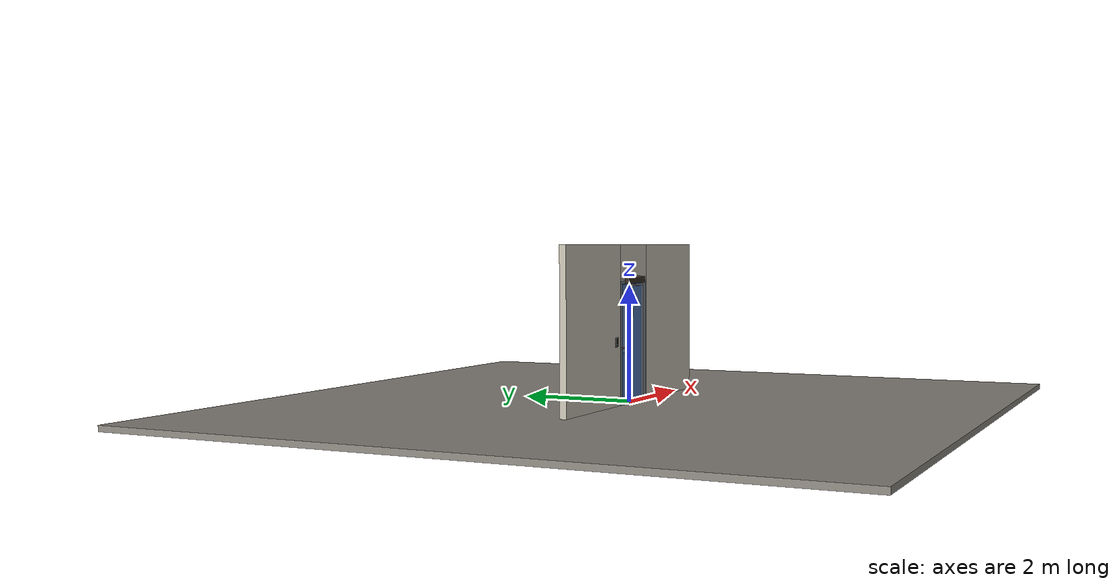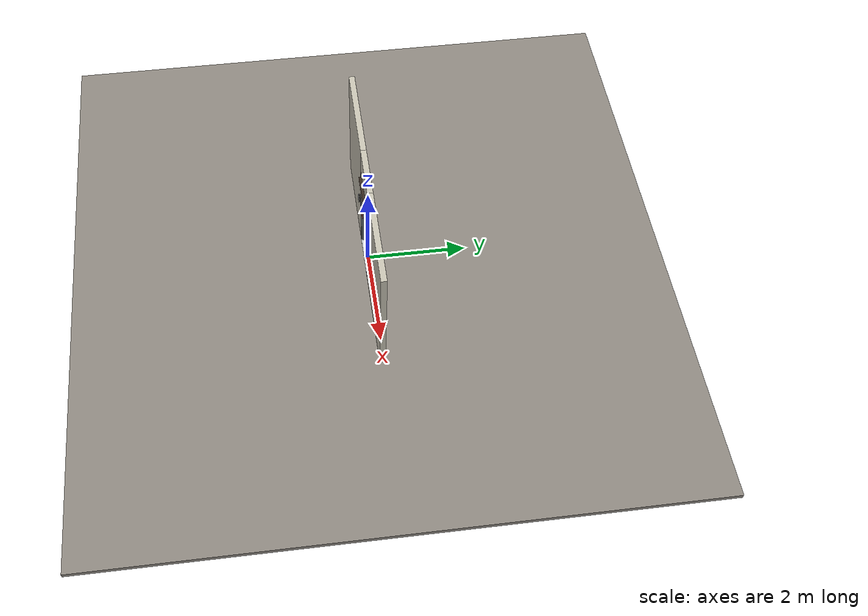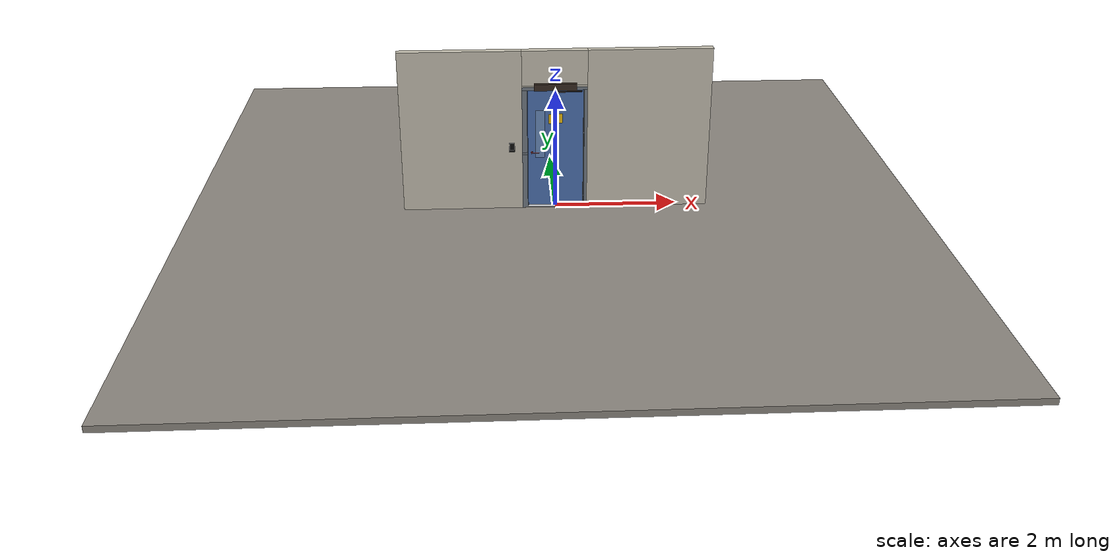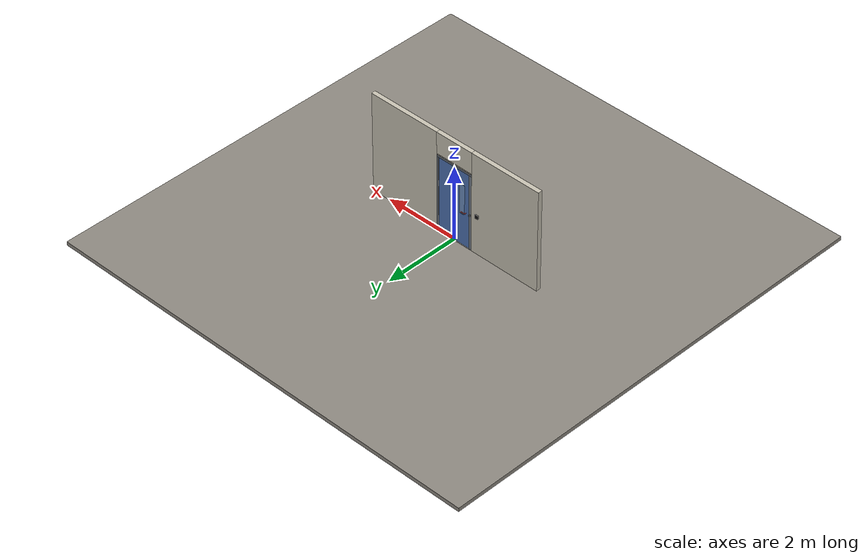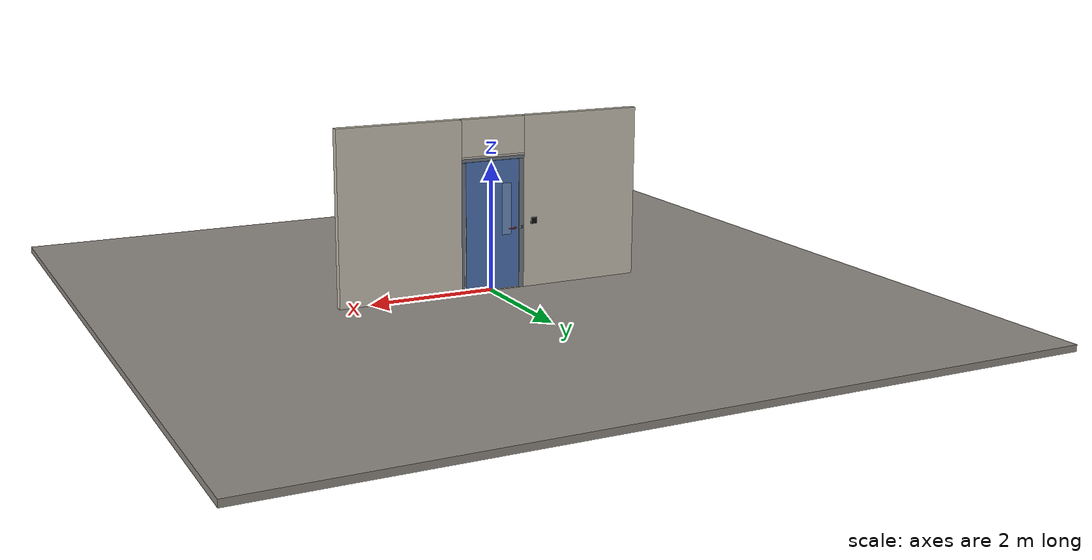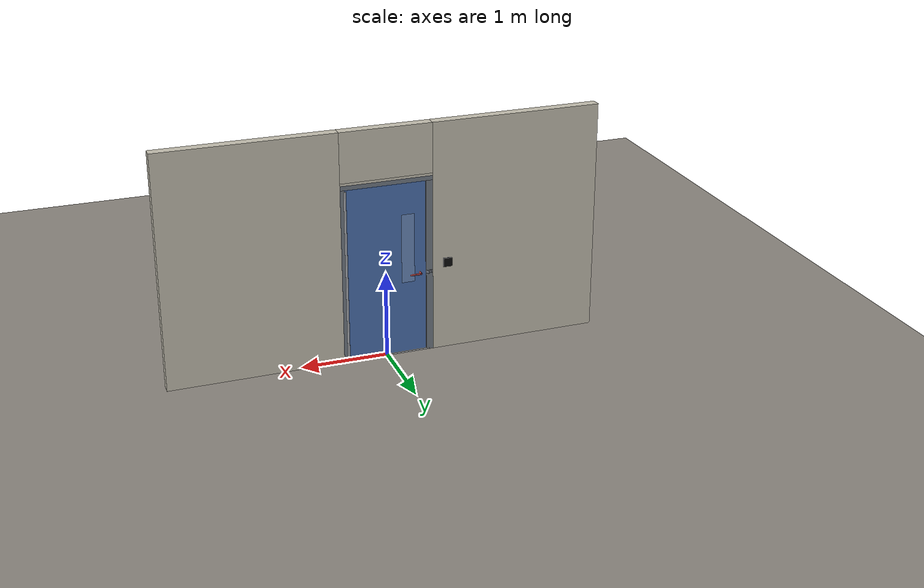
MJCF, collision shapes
<?xml version="1.0" ?>
<mujoco model="db0089_automatic_swing_full">
  <compiler angle="radian" meshdir="../../hardware" texturedir="../../textures" autolimits="true" inertiafromgeom="false"/>
  <option timestep="0.002" integrator="implicitfast" cone="elliptic" impratio="10" noslip_iterations="3">
    <flag multiccd="enable"/>
  </option>
  <size memory="16M"/>
  <default>
    <geom condim="4" solref="0.005 1" solimp="0.95 0.99 0.001"/>
    <joint solreflimit="0.005 1" solimplimit="0.95 0.99 0.001"/>
    <tendon solreflimit="0.005 1"/>
    <equality solref="0.002 1"/>
  </default>
  <visual>
    <headlight ambient="0.4 0.4 0.4" diffuse="0.7 0.7 0.7" specular="0.2 0.2 0.2"/>
    <quality shadowsize="4096"/>
    <map znear="0.01" zfar="60"/>
  </visual>
  <asset>
    <mesh name="lever_9f02b544cf" file="lever_9f02b544cf.obj"/>
    <material name="mat_floor" rgba="0.55 0.53 0.5 1" specular="0.2" shininess="0.15" reflectance="0"/>
    <material name="mat_wall" rgba="0.78 0.76 0.7 1" specular="0.2" shininess="0.1" reflectance="0"/>
    <material name="mat_leaf" rgba="0.3 0.45 0.7 1" specular="0.23" shininess="0.58" reflectance="0.02"/>
    <material name="mat_glass" rgba="0.85 0.92 0.95 0.25" specular="0.2" shininess="0.95" reflectance="0.1"/>
    <material name="mat_hinge" rgba="0.65 0.66 0.68 1" specular="0.74" shininess="0.5" reflectance="0.36"/>
    <material name="mat_op_nickel_satin" rgba="0.72 0.7 0.66 1" specular="0.8" shininess="0.65" reflectance="0.4"/>
    <material name="mat_trim" rgba="0.85 0.66 0.3 1" specular="0.8" shininess="0.75" reflectance="0.4"/>
    <material name="mat_bolt" rgba="0.85 0.66 0.3 1" specular="0.8" shininess="0.75" reflectance="0.4"/>
    <material name="mat_frame" rgba="0.45 0.48 0.52 1" specular="0.32" shininess="0.6" reflectance="0.08"/>
    <material name="mat_threshold" rgba="0.8 0.81 0.83 1" specular="0.8" shininess="0.6" reflectance="0.4"/>
    <material name="mat_closer" rgba="0.22 0.17 0.13 1" specular="0.8" shininess="0.6" reflectance="0.4"/>
    <material name="mat_placard" rgba="0.95 0.75 0.05 1" specular="0.2" shininess="0.5" reflectance="0"/>
    <material name="mat_wallreader" rgba="0.05 0.05 0.05 1" specular="0.38" shininess="0.3" reflectance="0.12"/>
    <texture name="skybox" type="skybox" builtin="gradient" rgb1="0.6 0.7 0.85" rgb2="0.9 0.92 0.95" width="256" height="256"/>
  </asset>
  <worldbody>
    <light name="sun" pos="1.5 -2.5 4" dir="-0.3 0.5 -0.8" directional="true" diffuse="0.8 0.8 0.8" specular="0.3 0.3 0.3" castshadow="true"/>
    <light name="fill" pos="-1.5 2.5 3" dir="0.3 -0.5 -0.7" directional="true" diffuse="0.35 0.35 0.4" castshadow="false"/>
    <camera name="robot_view" pos="0 -2.570688 1.734312" xyaxes="1 0 0 0 0.26963 0.962964" fovy="52"/>
    <camera name="far_view" pos="0 2.513687 1.734312" xyaxes="-1 0 0 0 -0.26963 0.962964" fovy="52"/>
    <camera name="iso" pos="-1.932062 -2.163938 2.141063" xyaxes="0.741536 -0.670913 0 0.242917 0.268487 0.932151" fovy="46"/>
    <camera name="detail_handle" pos="-0.1065 -0.877 1.245" xyaxes="0.97561 0.219512 0 -0.070934 0.315262 0.94635" fovy="38"/>
    <geom name="floor" type="box" size="6 6 0.05" pos="0 0 -0.05" material="mat_floor" group="0" contype="1" conaffinity="1" friction="0.8 0.005 0.0001" density="2400"/>
    <geom name="wall_left" type="box" size="0.97975 0.0575 1.35" pos="-1.52025 -0.0285 1.35" material="mat_wall" group="0" contype="1" conaffinity="1" friction="0.6 0.005 0.0001" density="800"/>
    <geom name="wall_right" type="box" size="0.99475 0.0575 1.35" pos="1.50525 -0.0285 1.35" material="mat_wall" group="0" contype="1" conaffinity="1" friction="0.6 0.005 0.0001" density="800"/>
    <geom name="wall_header" type="box" size="0.5255 0.0575 0.2875" pos="-0.015 -0.0285 2.4125" material="mat_wall" group="0" contype="1" conaffinity="1" friction="0.6 0.005 0.0001" density="800"/>
    <geom name="jamb_hinge" type="box" size="0.025 0.0575 1.0225" pos="0.4855 -0.0285 1.0225" material="mat_frame" group="0" contype="1" conaffinity="1" friction="0.6 0.005 0.0001" density="300"/>
    <geom name="strike_965_wall_n" type="box" size="0.04 0.03825 0.0183" pos="-0.5005 -0.04775 0.965" material="mat_frame" group="0" contype="1" conaffinity="1" friction="0.6 0.005 0.0001" density="300"/>
    <geom name="strike_965_wall_p" type="box" size="0.04 0.008 0.0183" pos="-0.5005 0.0175 0.965" material="mat_frame" group="0" contype="1" conaffinity="1" friction="0.6 0.005 0.0001" density="300"/>
    <geom name="strike_965_ramp" type="box" size="0.04 0.018028 0.0183" pos="-0.503782 0.018312 0.965" quat="0.957092 0 0 0.289784" material="mat_frame" group="0" contype="1" conaffinity="1" friction="0.12 0.005 0.0001" density="300"/>
    <geom name="strike_965_back" type="box" size="0.0285 0.0095 0.0183" pos="-0.512 0 0.965" material="mat_frame" group="0" contype="1" conaffinity="1" friction="0.6 0.005 0.0001" density="300"/>
    <geom name="jamb_strike_0" type="box" size="0.04 0.0575 0.47335" pos="-0.5005 -0.0285 0.47335" material="mat_frame" group="0" contype="1" conaffinity="1" friction="0.6 0.005 0.0001" density="300"/>
    <geom name="jamb_strike_1" type="box" size="0.04 0.0575 0.53085" pos="-0.5005 -0.0285 1.51415" material="mat_frame" group="0" contype="1" conaffinity="1" friction="0.6 0.005 0.0001" density="300"/>
    <geom name="jamb_head" type="box" size="0.5255 0.0575 0.025" pos="-0.015 -0.0285 2.07" material="mat_frame" group="0" contype="1" conaffinity="1" friction="0.6 0.005 0.0001" density="300"/>
    <geom name="head_stud" type="box" size="0.5255 0.0575 0.015" pos="-0.015 -0.0285 2.11" material="mat_wall" group="0" contype="1" conaffinity="1" friction="0.6 0.005 0.0001" density="500"/>
    <geom name="stop_hinge" type="box" size="0.0055 0.016 1.0225" pos="0.455 -0.0385 1.0225" material="mat_frame" group="0" contype="1" conaffinity="1" friction="0.6 0.005 0.0001" density="300"/>
    <geom name="stop_strike" type="box" size="0.0055 0.016 1.0225" pos="-0.455 -0.0385 1.0225" material="mat_frame" group="0" contype="1" conaffinity="1" friction="0.6 0.005 0.0001" density="300"/>
    <geom name="stop_head" type="box" size="0.4605 0.016 0.0055" pos="0 -0.0385 2.0395" material="mat_frame" group="0" contype="1" conaffinity="1" friction="0.6 0.005 0.0001" density="300"/>
    <geom name="threshold" type="box" size="0.5105 0.0575 0.0065" pos="0 -0.0285 0.0065" material="mat_threshold" group="0" contype="1" conaffinity="1" friction="0.5 0.005 0.0001" density="2700"/>
    <geom name="auto_operator_header" type="box" size="0.34 0.055 0.055" pos="0 -0.087 2.108" material="mat_closer" group="0" contype="1" conaffinity="1" friction="0.6 0.005 0.0001" density="1500"/>
    <geom name="wall_reader" type="box" size="0.04 0.015 0.06" pos="-0.7105 -0.101 1.1" material="mat_wallreader" group="0" contype="1" conaffinity="1" friction="0.6 0.005 0.0001" density="1000"/>
    <geom name="wave_sensor_n" type="box" size="0.05 0.012 0.05" pos="-0.7105 -0.098 1.05" material="mat_wallreader" group="0" contype="1" conaffinity="1" friction="0.6 0.005 0.0001" density="1000"/>
    <geom name="wave_sensor_p" type="box" size="0.05 0.012 0.05" pos="-0.7105 0.041 1.05" material="mat_wallreader" group="0" contype="1" conaffinity="1" friction="0.6 0.005 0.0001" density="1000"/>
    <geom name="wave_sensor_p_pad" type="box" size="0.04 0.058 0.04" pos="-0.7105 -0.0285 1.05" material="mat_wallreader" group="1" contype="0" conaffinity="0" density="7850"/>
    <site name="approach_point" pos="0 -1.5 0" quat="1 0 0 0" size="0.05" rgba="0.2 0.9 0.2 0.5" group="4"/>
    <site name="goal_point" pos="0 1.5 0" quat="1 0 0 0" size="0.05" rgba="0.2 0.9 0.2 0.5" group="4"/>
    <site name="door_plane_center" pos="0 0 1.0225" quat="1 0 0 0" size="0.02" rgba="0.2 0.9 0.2 0.5" group="4"/>
    <body name="leaf" pos="0.4605 0 0">
      <inertial pos="-0.427331 0.001491 1.039359" mass="56.447972" quat="0.498104 0.503898 -0.496797 0.501171" diaginertia="4.40359162 19.573206235 23.951712336"/>
      <joint name="leaf_hinge" type="hinge" axis="0 0 -1" pos="-0.003 0.029 0" limited="true" range="0 1.570796" damping="15.25611" frictionloss="1.116277" stiffness="12.827888" springref="-1.543512" armature="0.02"/>
      <geom name="leaf_slab" type="box" size="0.457 0.022 1.012" pos="-0.46 0 1.029" material="mat_leaf" group="0" contype="1" conaffinity="1" friction="0.4 0.005 0.0001" density="1"/>
      <geom name="leaf_glass_0" type="box" size="0.075 0.0228 0.4048" pos="-0.71146 0 1.27188" material="mat_glass" group="1" contype="0" conaffinity="0" density="1"/>
      <geom name="hinge_continuous" type="cylinder" size="0.0136 1.002" pos="-0.003 0.029 1.029" material="mat_hinge" group="1" contype="0" conaffinity="0" density="2700"/>
      <geom name="leaf_latch_bolt_faceplate" type="box" size="0.0006 0.014 0.0283" pos="-0.9164 0 0.965" material="mat_bolt" group="1" contype="0" conaffinity="0" density="8500"/>
      <geom name="auto_operator_arm" type="box" size="0.22 0.008 0.008" pos="-0.25 -0.052 2.004" material="mat_closer" group="1" contype="0" conaffinity="0" density="2700"/>
      <geom name="auto_operator_arm_shoe" type="box" size="0.03 0.016 0.014" pos="-0.44 -0.038 2.004" material="mat_closer" group="1" contype="0" conaffinity="0" density="2700"/>
      <geom name="warning_placard" type="box" size="0.11 0.001 0.08" pos="-0.46 -0.023 1.535" material="mat_placard" group="2" contype="0" conaffinity="0" density="1000"/>
      <site name="leaf_edge_mid" pos="-0.917 0 1.012" quat="1 0 0 0" size="0.02" rgba="0.2 0.9 0.2 0.5" group="4"/>
      <body name="leaf_handle" pos="-0.847 0 0.965">
        <inertial pos="0.028544 0 0" mass="0.978187" quat="0 0.707107 0.707107 0" diaginertia="0.001772047 0.003604455 0.005198299"/>
        <joint name="leaf_handle_hinge" type="hinge" axis="0 1 0" limited="true" range="0 0.96" damping="0.245624" frictionloss="0.048" stiffness="1.2" springref="-0.458333" armature="0.01"/>
        <geom name="leaf_handle_spindle" type="cylinder" size="0.006 0.03" pos="0 0 0" quat="0.707107 -0.707107 0 0" material="mat_op_nickel_satin" group="1" contype="0" conaffinity="0" density="7850"/>
        <geom name="leaf_handle_lever_n" type="mesh" mesh="lever_9f02b544cf" pos="0 -0.022 0" quat="0 0 -0.707107 0.707107" material="mat_op_nickel_satin" group="1" contype="0" conaffinity="0" density="3000"/>
        <geom name="leaf_handle_lever_col_n" type="capsule" size="0.0095 0.053" pos="0.0625 -0.077 0" quat="0.707107 0 0.707107 0" material="mat_op_nickel_satin" group="3" contype="1" conaffinity="1" rgba="0.8 0.3 0.3 0.25" friction="0.7 0.01 0.0001" density="3000"/>
        <geom name="leaf_handle_hub_col_n" type="cylinder" size="0.012 0.022" pos="0 -0.052 0" quat="0.707107 -0.707107 0 0" material="mat_op_nickel_satin" group="3" contype="1" conaffinity="1" rgba="0.8 0.3 0.3 0.25" friction="0.6 0.005 0.0001" density="3000"/>
        <geom name="leaf_handle_lever_p" type="mesh" mesh="lever_9f02b544cf" pos="0 0.022 0" quat="0 0 0.707107 0.707107" material="mat_op_nickel_satin" group="1" contype="0" conaffinity="0" density="3000"/>
        <geom name="leaf_handle_lever_col_p" type="capsule" size="0.0095 0.053" pos="0.0625 0.077 0" quat="0.707107 0 0.707107 0" material="mat_op_nickel_satin" group="3" contype="1" conaffinity="1" rgba="0.8 0.3 0.3 0.25" friction="0.7 0.01 0.0001" density="3000"/>
        <geom name="leaf_handle_hub_col_p" type="cylinder" size="0.012 0.022" pos="0 0.052 0" quat="0.707107 -0.707107 0 0" material="mat_op_nickel_satin" group="3" contype="1" conaffinity="1" rgba="0.8 0.3 0.3 0.25" friction="0.6 0.005 0.0001" density="3000"/>
        <site name="leaf_handle_grip_n" pos="0.1 -0.077 0" quat="1 0 0 0" size="0.012" rgba="0.2 0.9 0.2 0.5" group="4"/>
        <site name="leaf_handle_grip_p" pos="0.1 0.077 0" quat="1 0 0 0" size="0.012" rgba="0.2 0.9 0.2 0.5" group="4"/>
      </body>
      <body name="leaf_latch_bolt" pos="-0.917 0 0.965">
        <inertial pos="0.0055 0 0" mass="0.074627" quat="0.92388 0.382683 0 0" diaginertia="0.000002271 0.000013255 0.000013255"/>
        <joint name="leaf_latch_bolt_slide" type="slide" axis="1 0 0" limited="true" range="0 0.019" damping="2" frictionloss="0.3" stiffness="600" springref="-0.01" armature="0.1"/>
        <geom name="leaf_latch_bolt_capsule" type="capsule" size="0.008 0.0165" pos="0.0055 0 0" quat="0.707107 0 -0.707107 0" material="mat_bolt" group="0" contype="1" conaffinity="1" friction="0.2 0.005 0.0001" density="8500"/>
      </body>
    </body>
  </worldbody>
  <tendon>
    <fixed name="leaf_latch_bolt_coupling" limited="true" range="0 10">
      <joint joint="leaf_latch_bolt_slide" coef="1"/>
      <joint joint="leaf_handle_hinge" coef="-0.020879"/>
    </fixed>
  </tendon>
  <actuator>
    <position name="swing_operator" joint="leaf_hinge" kp="150" kv="40" forcerange="-60 60" ctrlrange="0 1.6"/>
  </actuator>
  <sensor>
    <jointpos name="leaf_hinge_pos" joint="leaf_hinge"/>
    <jointvel name="leaf_hinge_vel" joint="leaf_hinge"/>
    <jointpos name="leaf_handle_hinge_pos" joint="leaf_handle_hinge"/>
    <jointvel name="leaf_handle_hinge_vel" joint="leaf_handle_hinge"/>
    <jointpos name="leaf_latch_bolt_slide_pos" joint="leaf_latch_bolt_slide"/>
    <jointvel name="leaf_latch_bolt_slide_vel" joint="leaf_latch_bolt_slide"/>
  </sensor>
</mujoco>
